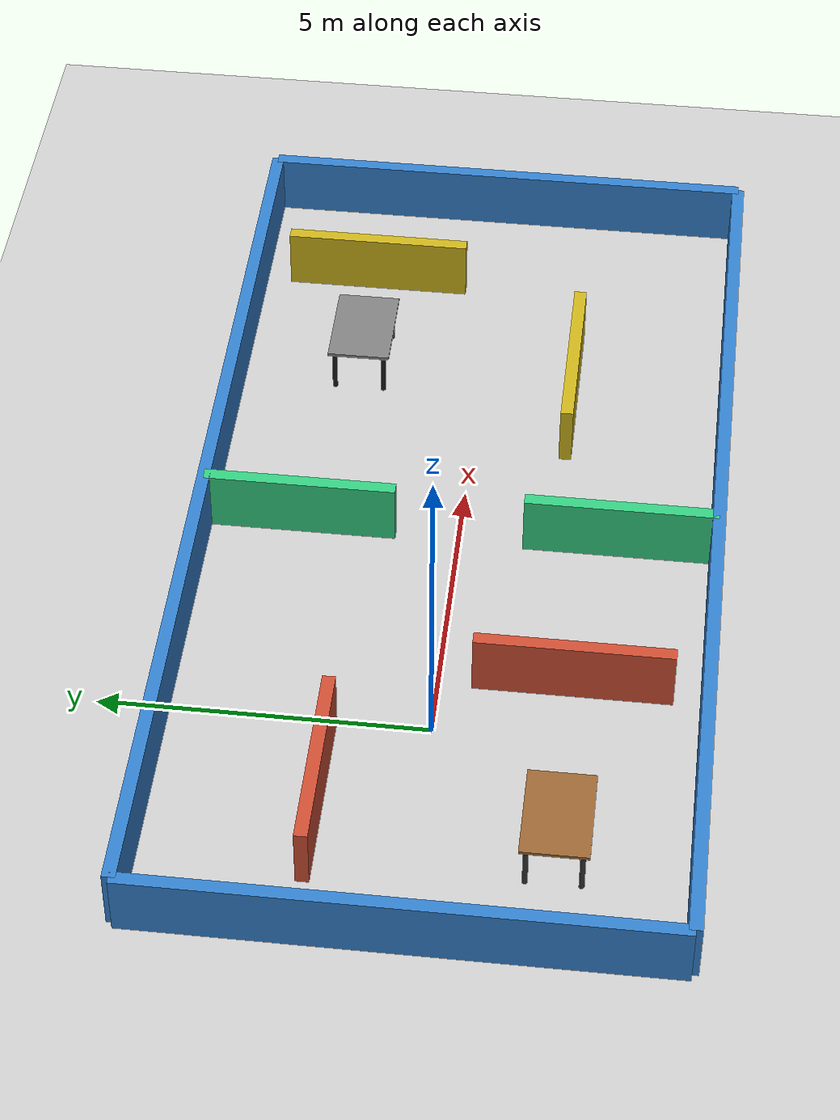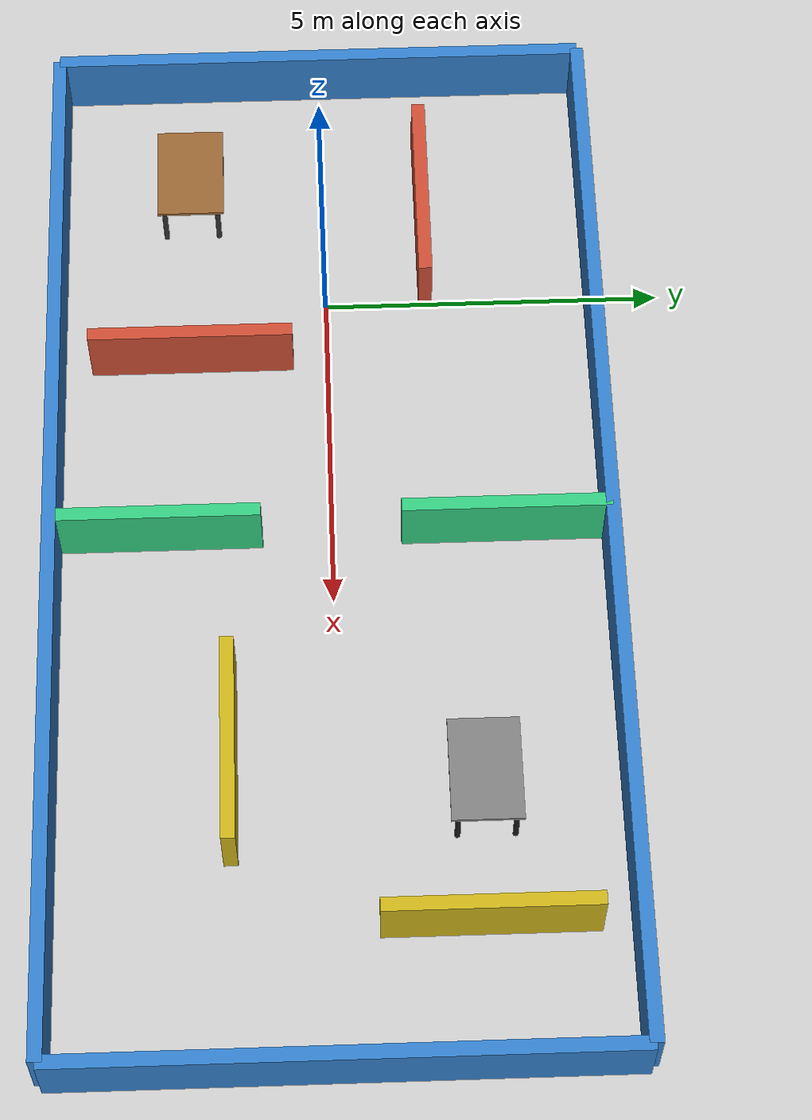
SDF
<?xml version='1.0' encoding='utf-8'?>
<sdf version='1.9'>
  <world name='double_maze_world'>

    <!-- PLUGINS BASE DE FÍSICAS -->
    <physics name='1ms' type='ignored'>
      <max_step_size>0.001</max_step_size>
      <real_time_factor>1</real_time_factor>
      <real_time_update_rate>1000</real_time_update_rate>
    </physics>
    <plugin name='gz::sim::systems::Physics' filename='ignition-gazebo-physics-system'/>
    <plugin name='gz::sim::systems::UserCommands' filename='ignition-gazebo-user-commands-system'/>
    <plugin name='gz::sim::systems::SceneBroadcaster' filename='ignition-gazebo-scene-broadcaster-system'/>
    <plugin name='gz::sim::systems::Contact' filename='ignition-gazebo-contact-system'/>
    <gravity>0 0 -9.8</gravity>
    <magnetic_field>6e-06 2.3e-05 -4.2e-05</magnetic_field>
    <atmosphere type='adiabatic'/>

    <scene>
      <ambient>0.4 0.4 0.4 1</ambient>
      <background>0.7 0.7 0.7 1</background>
      <shadows>true</shadows>
    </scene>

    <!-- SOL Y LUZ -->
    <light name='sun' type='directional'>
      <pose>4 0 10 0 0 0</pose>
      <cast_shadows>true</cast_shadows>
      <intensity>1</intensity>
      <direction>-0.5 0.1 -0.9</direction>
      <diffuse>0.8 0.8 0.8 1</diffuse>
      <specular>0.2 0.2 0.2 1</specular>
      <attenuation>
        <range>1000</range>
        <linear>0.01</linear>
        <constant>0.9</constant>
        <quadratic>0.001</quadratic>
      </attenuation>
    </light>

    <!-- PLANO DEL SUELO -->
    <model name='ground_plane'>
      <static>true</static>
      <link name='link'>
        <collision name='collision'>
          <geometry>
            <plane>
              <normal>0 0 1</normal>
              <size>100 100</size>
            </plane>
          </geometry>
        </collision>
        <visual name='visual'>
          <geometry>
            <plane>
              <normal>0 0 1</normal>
              <size>100 100</size>
            </plane>
          </geometry>
          <material>
            <ambient>0.8 0.8 0.8 1</ambient>
            <diffuse>0.8 0.8 0.8 1</diffuse>
            <specular>0.8 0.8 0.8 1</specular>
          </material>
        </visual>
      </link>
    </model>

    <!-- EL LABERINTO DOBLE (Dos cuartos interconectados) -->
    <model name='double_maze'>
      <static>true</static>
      <pose>0 0 0 0 0 0</pose>
      <link name='maze_walls'>

        <!-- ================= PERÍMETRO EXTERIOR ================= -->
        <!-- Pared Norte (Abarca ambos cuartos, 16m largo) -->
        <collision name='wall_n_col'><pose>4 4 0.5 0 0 0</pose><geometry><box><size>16 0.2 1</size></box></geometry></collision>
        <visual name='wall_n_vis'><pose>4 4 0.5 0 0 0</pose><geometry><box><size>16 0.2 1</size></box></geometry><material><ambient>0.2 0.5 0.8 1</ambient><diffuse>0.2 0.5 0.8 1</diffuse></material></visual>

        <!-- Pared Sur (Abarca ambos cuartos, 16m largo) -->
        <collision name='wall_s_col'><pose>4 -4 0.5 0 0 0</pose><geometry><box><size>16 0.2 1</size></box></geometry></collision>
        <visual name='wall_s_vis'><pose>4 -4 0.5 0 0 0</pose><geometry><box><size>16 0.2 1</size></box></geometry><material><ambient>0.2 0.5 0.8 1</ambient><diffuse>0.2 0.5 0.8 1</diffuse></material></visual>

        <!-- Pared Oeste (Izquierda) -->
        <collision name='wall_w_col'><pose>-4 0 0.5 0 0 0</pose><geometry><box><size>0.2 8 1</size></box></geometry></collision>
        <visual name='wall_w_vis'><pose>-4 0 0.5 0 0 0</pose><geometry><box><size>0.2 8 1</size></box></geometry><material><ambient>0.2 0.5 0.8 1</ambient><diffuse>0.2 0.5 0.8 1</diffuse></material></visual>

        <!-- Pared Este (Derecha) -->
        <collision name='wall_e_col'><pose>12 0 0.5 0 0 0</pose><geometry><box><size>0.2 8 1</size></box></geometry></collision>
        <visual name='wall_e_vis'><pose>12 0 0.5 0 0 0</pose><geometry><box><size>0.2 8 1</size></box></geometry><material><ambient>0.2 0.5 0.8 1</ambient><diffuse>0.2 0.5 0.8 1</diffuse></material></visual>

        <!-- ================= PARED CENTRAL CON PUERTA ================= -->
        <!-- Segmento Superior de la pared divisoria -->
        <collision name='wall_mid_top_col'><pose>4 2.5 0.5 0 0 0</pose><geometry><box><size>0.2 3 1</size></box></geometry></collision>
        <visual name='wall_mid_top_vis'><pose>4 2.5 0.5 0 0 0</pose><geometry><box><size>0.2 3 1</size></box></geometry><material><ambient>0.2 0.8 0.5 1</ambient><diffuse>0.2 0.8 0.5 1</diffuse></material></visual>

        <!-- Segmento Inferior de la pared divisoria -->
        <collision name='wall_mid_bot_col'><pose>4 -2.5 0.5 0 0 0</pose><geometry><box><size>0.2 3 1</size></box></geometry></collision>
        <visual name='wall_mid_bot_vis'><pose>4 -2.5 0.5 0 0 0</pose><geometry><box><size>0.2 3 1</size></box></geometry><material><ambient>0.2 0.8 0.5 1</ambient><diffuse>0.2 0.8 0.5 1</diffuse></material></visual>
        <!-- NOTA: Queda una puerta de 2 metros en el centro (Y=-1 a Y=1) -->

        <!-- ================= OBSTÁCULOS CUARTO 1 (Izquierdo) ================= -->
        <collision name='obs_1a_col'><pose>-1.5 1.5 0.5 0 0 0</pose><geometry><box><size>3 0.2 1</size></box></geometry></collision>
        <visual name='obs_1a_vis'><pose>-1.5 1.5 0.5 0 0 0</pose><geometry><box><size>3 0.2 1</size></box></geometry><material><ambient>0.8 0.3 0.2 1</ambient><diffuse>0.8 0.3 0.2 1</diffuse></material></visual>

        <collision name='obs_1b_col'><pose>1 -2 0.5 0 0 0</pose><geometry><box><size>0.2 3 1</size></box></geometry></collision>
        <visual name='obs_1b_vis'><pose>1 -2 0.5 0 0 0</pose><geometry><box><size>0.2 3 1</size></box></geometry><material><ambient>0.8 0.3 0.2 1</ambient><diffuse>0.8 0.3 0.2 1</diffuse></material></visual>

        <!-- ================= OBSTÁCULOS CUARTO 2 (Derecho) ================= -->
        <collision name='obs_2a_col'><pose>7.5 -1.5 0.5 0 0 0</pose><geometry><box><size>3 0.2 1</size></box></geometry></collision>
        <visual name='obs_2a_vis'><pose>7.5 -1.5 0.5 0 0 0</pose><geometry><box><size>3 0.2 1</size></box></geometry><material><ambient>0.8 0.7 0.1 1</ambient><diffuse>0.8 0.7 0.1 1</diffuse></material></visual>

        <collision name='obs_2b_col'><pose>10 2 0.5 0 0 0</pose><geometry><box><size>0.2 3 1</size></box></geometry></collision>
        <visual name='obs_2b_vis'><pose>10 2 0.5 0 0 0</pose><geometry><box><size>0.2 3 1</size></box></geometry><material><ambient>0.8 0.7 0.1 1</ambient><diffuse>0.8 0.7 0.1 1</diffuse></material></visual>

      </link>
    </model>

    <!-- MESA 1 (Cuarto Izquierdo) -->
    <model name='table_1'>
      <static>true</static>
      <pose>-2 -2 0 0 0 0</pose>
      <link name='table_parts'>
        <!-- Superficie -->
        <collision name='top_col'><pose>0 0 0.75 0 0 0</pose><geometry><box><size>1.5 1.0 0.05</size></box></geometry></collision>
        <visual name='top_vis'><pose>0 0 0.75 0 0 0</pose><geometry><box><size>1.5 1.0 0.05</size></box></geometry><material><ambient>0.6 0.4 0.2 1</ambient><diffuse>0.6 0.4 0.2 1</diffuse></material></visual>
        <!-- Patas -->
        <collision name='leg1_col'><pose>0.65 0.4 0.375 0 0 0</pose><geometry><cylinder><radius>0.04</radius><length>0.75</length></cylinder></geometry></collision>
        <visual name='leg1_vis'><pose>0.65 0.4 0.375 0 0 0</pose><geometry><cylinder><radius>0.04</radius><length>0.75</length></cylinder></geometry><material><ambient>0.2 0.2 0.2 1</ambient><diffuse>0.2 0.2 0.2 1</diffuse></material></visual>
        <collision name='leg2_col'><pose>-0.65 0.4 0.375 0 0 0</pose><geometry><cylinder><radius>0.04</radius><length>0.75</length></cylinder></geometry></collision>
        <visual name='leg2_vis'><pose>-0.65 0.4 0.375 0 0 0</pose><geometry><cylinder><radius>0.04</radius><length>0.75</length></cylinder></geometry><material><ambient>0.2 0.2 0.2 1</ambient><diffuse>0.2 0.2 0.2 1</diffuse></material></visual>
        <collision name='leg3_col'><pose>0.65 -0.4 0.375 0 0 0</pose><geometry><cylinder><radius>0.04</radius><length>0.75</length></cylinder></geometry></collision>
        <visual name='leg3_vis'><pose>0.65 -0.4 0.375 0 0 0</pose><geometry><cylinder><radius>0.04</radius><length>0.75</length></cylinder></geometry><material><ambient>0.2 0.2 0.2 1</ambient><diffuse>0.2 0.2 0.2 1</diffuse></material></visual>
        <collision name='leg4_col'><pose>-0.65 -0.4 0.375 0 0 0</pose><geometry><cylinder><radius>0.04</radius><length>0.75</length></cylinder></geometry></collision>
        <visual name='leg4_vis'><pose>-0.65 -0.4 0.375 0 0 0</pose><geometry><cylinder><radius>0.04</radius><length>0.75</length></cylinder></geometry><material><ambient>0.2 0.2 0.2 1</ambient><diffuse>0.2 0.2 0.2 1</diffuse></material></visual>
      </link>
    </model>

    <!-- MESA 2 (Cuarto Derecho) -->
    <model name='table_2'>
      <static>true</static>
      <pose>8 2 0 0 0 0</pose>
      <link name='table_parts'>
        <!-- Superficie -->
        <collision name='top_col'><pose>0 0 0.75 0 0 0</pose><geometry><box><size>1.5 1.0 0.05</size></box></geometry></collision>
        <visual name='top_vis'><pose>0 0 0.75 0 0 0</pose><geometry><box><size>1.5 1.0 0.05</size></box></geometry><material><ambient>0.5 0.5 0.5 1</ambient><diffuse>0.5 0.5 0.5 1</diffuse></material></visual>
        <!-- Patas -->
        <collision name='leg1_col'><pose>0.65 0.4 0.375 0 0 0</pose><geometry><cylinder><radius>0.04</radius><length>0.75</length></cylinder></geometry></collision>
        <visual name='leg1_vis'><pose>0.65 0.4 0.375 0 0 0</pose><geometry><cylinder><radius>0.04</radius><length>0.75</length></cylinder></geometry><material><ambient>0.1 0.1 0.1 1</ambient><diffuse>0.1 0.1 0.1 1</diffuse></material></visual>
        <collision name='leg2_col'><pose>-0.65 0.4 0.375 0 0 0</pose><geometry><cylinder><radius>0.04</radius><length>0.75</length></cylinder></geometry></collision>
        <visual name='leg2_vis'><pose>-0.65 0.4 0.375 0 0 0</pose><geometry><cylinder><radius>0.04</radius><length>0.75</length></cylinder></geometry><material><ambient>0.1 0.1 0.1 1</ambient><diffuse>0.1 0.1 0.1 1</diffuse></material></visual>
        <collision name='leg3_col'><pose>0.65 -0.4 0.375 0 0 0</pose><geometry><cylinder><radius>0.04</radius><length>0.75</length></cylinder></geometry></collision>
        <visual name='leg3_vis'><pose>0.65 -0.4 0.375 0 0 0</pose><geometry><cylinder><radius>0.04</radius><length>0.75</length></cylinder></geometry><material><ambient>0.1 0.1 0.1 1</ambient><diffuse>0.1 0.1 0.1 1</diffuse></material></visual>
        <collision name='leg4_col'><pose>-0.65 -0.4 0.375 0 0 0</pose><geometry><cylinder><radius>0.04</radius><length>0.75</length></cylinder></geometry></collision>
        <visual name='leg4_vis'><pose>-0.65 -0.4 0.375 0 0 0</pose><geometry><cylinder><radius>0.04</radius><length>0.75</length></cylinder></geometry><material><ambient>0.1 0.1 0.1 1</ambient><diffuse>0.1 0.1 0.1 1</diffuse></material></visual>
      </link>
    </model>

  </world>
</sdf>
